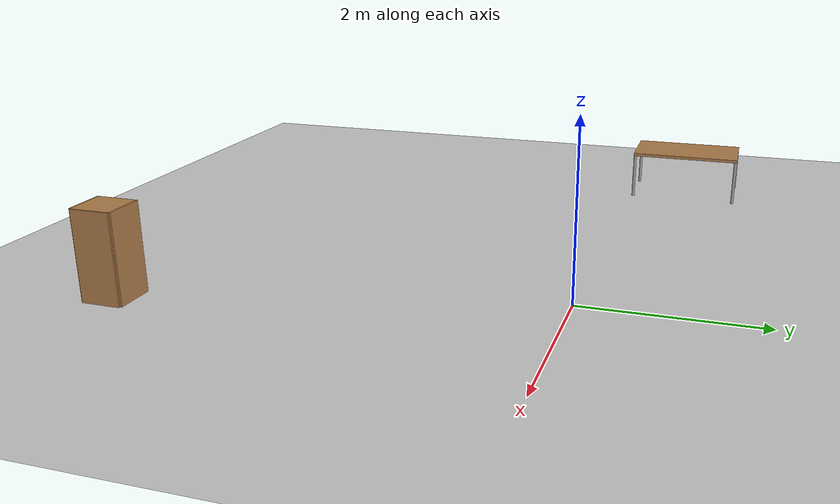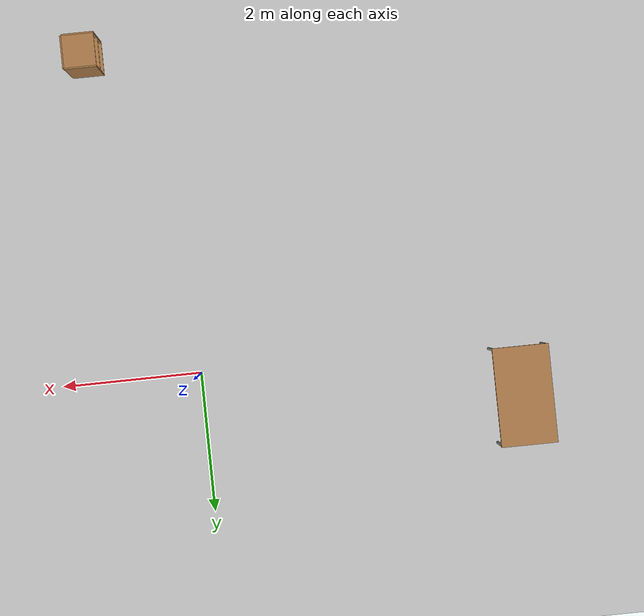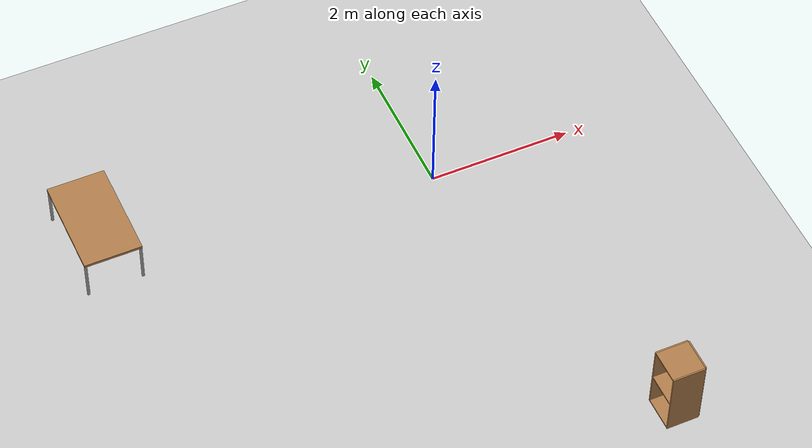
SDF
<sdf version="1.6">
 <world name="default">
  <light name="sun" type="directional">
   <pose>0 0 10 0 -0 0</pose>
   <diffuse>0.8 0.8 0.8 1</diffuse>
   <specular>0.2 0.2 0.2 1</specular>
   <attenuation>
    <range>1000</range>
    <constant>0.9</constant>
    <linear>0.01</linear>
    <quadratic>0.001</quadratic>
   </attenuation>
   <direction>-0.5 0.1 -0.9</direction>
  </light>
  <model name="ground_plane">
   <static>1</static>
   <link name="link">
    <collision name="collision">
     <geometry><plane><normal>0 0 1</normal><size>100 100</size></plane></geometry>
     <surface><friction><ode><mu>100</mu><mu2>50</mu2></ode></friction></surface>
    </collision>
    <visual name="visual">
     <cast_shadows>0</cast_shadows>
     <geometry><plane><normal>0 0 1</normal><size>100 100</size></plane></geometry>
     <material>
      <script><uri>file://media/materials/scripts/gazebo.material</uri><name>Gazebo/Grey</name></script>
     </material>
    </visual>
   </link>
  </model>
  <gravity>0 0 -9.8</gravity>
  <magnetic_field>6e-06 2.3e-05 -4.2e-05</magnetic_field>
  <atmosphere type="adiabatic"/>
  <physics name="default_physics" default="0" type="ode">
   <max_step_size>0.001</max_step_size>
   <real_time_factor>1</real_time_factor>
   <real_time_update_rate>1000</real_time_update_rate>
  </physics>
  <scene><ambient>0.4 0.4 0.4 1</ambient><background>0.7 0.7 0.7 1</background><shadows>1</shadows></scene>
  <audio><device>default</device></audio>
  <spherical_coordinates>
   <surface_model>EARTH_WGS84</surface_model>
   <latitude_deg>0</latitude_deg>
   <longitude_deg>0</longitude_deg>
   <elevation>0</elevation>
   <heading_deg>0</heading_deg>
  </spherical_coordinates>
  <model name="cabinet">
   <static>1</static>
   <link name="cabinet_bottom_plate">
    <inertial>
     <pose>0 0 -1 0 -0 0</pose>
     <inertia><ixx>2.05</ixx><ixy>0</ixy><ixz>0</ixz><iyy>2.05</iyy><iyz>0</iyz><izz>2.05</izz></inertia>
     <mass>25</mass>
    </inertial>
    <collision name="cabinet_bottom_plate_geom">
     <pose>0 0 0.01 0 -0 0</pose>
     <geometry><box><size>0.45 0.45 0.02</size></box></geometry>
    </collision>
    <visual name="cabinet_bottom_plate_geom_visual">
     <pose>0 0 0.01 0 -0 0</pose>
     <geometry><box><size>0.45 0.45 0.02</size></box></geometry>
     <material>
      <script><uri>file://media/materials/scripts/gazebo.material</uri><name>Gazebo/Wood</name></script>
     </material>
    </visual>
    <collision name="cabinet_bottom_plate_geom_cabinet_back_plate">
     <pose>0.235 0 0.51 0 -0 0</pose>
     <geometry><box><size>0.02 0.45 1.02</size></box></geometry>
    </collision>
    <visual name="cabinet_bottom_plate_geom_cabinet_back_plate_visual">
     <pose>0.235 0 0.51 0 -0 0</pose>
     <geometry><box><size>0.02 0.45 1.02</size></box></geometry>
     <material>
      <script><uri>file://media/materials/scripts/gazebo.material</uri><name>Gazebo/Wood</name></script>
     </material>
    </visual>
    <collision name="cabinet_bottom_plate_geom_cabinet_left_plate">
     <pose>0 0.235 0.51 0 -0 0</pose>
     <geometry><box><size>0.45 0.02 1.02</size></box></geometry>
    </collision>
    <visual name="cabinet_bottom_plate_geom_cabinet_left_plate_visual">
     <pose>0 0.235 0.51 0 -0 0</pose>
     <geometry><box><size>0.45 0.02 1.02</size></box></geometry>
     <material>
      <script><uri>file://media/materials/scripts/gazebo.material</uri><name>Gazebo/Wood</name></script>
     </material>
    </visual>
    <collision name="cabinet_bottom_plate_geom_cabinet_middle_plate">
     <pose>0 0 0.51 0 -0 0</pose>
     <geometry><box><size>0.45 0.45 0.02</size></box></geometry>
    </collision>
    <visual name="cabinet_bottom_plate_geom_cabinet_middle_plate_visual">
     <pose>0 0 0.51 0 -0 0</pose>
     <geometry><box><size>0.45 0.45 0.02</size></box></geometry>
     <material>
      <script><uri>file://media/materials/scripts/gazebo.material</uri><name>Gazebo/Wood</name></script>
     </material>
    </visual>
    <collision name="cabinet_bottom_plate_geom_cabinet_right_plate">
     <pose>0 -0.235 0.51 0 -0 0</pose>
     <geometry><box><size>0.45 0.02 1.02</size></box></geometry>
    </collision>
    <visual name="cabinet_bottom_plate_geom_cabinet_right_plate_visual">
     <pose>0 -0.235 0.51 0 -0 0</pose>
     <geometry><box><size>0.45 0.02 1.02</size></box></geometry>
     <material>
      <script><uri>file://media/materials/scripts/gazebo.material</uri><name>Gazebo/Wood</name></script>
     </material>
    </visual>
    <collision name="cabinet_bottom_plate_geom_cabinet_top_plate">
     <pose>0 0 1.01 0 -0 0</pose>
     <geometry><box><size>0.45 0.45 0.02</size></box></geometry>
    </collision>
    <visual name="cabinet_bottom_plate_geom_cabinet_top_plate_visual">
     <pose>0 0 1.01 0 -0 0</pose>
     <geometry><box><size>0.45 0.45 0.02</size></box></geometry>
     <material>
      <script><uri>file://media/materials/scripts/gazebo.material</uri><name>Gazebo/Wood</name></script>
     </material>
    </visual>
   </link>
   <pose>1.18875 -4.65304 0 0 -0 0</pose>
  </model>
  <model name="table_short">
   <link name="link">
    <inertial>
     <inertia><ixx>1</ixx><ixy>0</ixy><ixz>0</ixz><iyy>1</iyy><iyz>0</iyz><izz>1</izz></inertia>
     <mass>1</mass>
    </inertial>
    <visual name="visual1">
     <pose>0 0 0.6 0 -0 0</pose>
     <geometry><box><size>1.4 0.8 0.04</size></box></geometry>
     <material>
      <script><uri>file://media/materials/scripts/gazebo.material</uri><name>Gazebo/Wood</name></script>
      <ambient>1 1 1 1</ambient>
      <diffuse>1 1 1 1</diffuse>
      <specular>0.2 0.2 0.2 1</specular>
      <emissive>0 0 0 1</emissive>
      <shader type="vertex"><normal_map>__default__</normal_map></shader>
     </material>
    </visual>
    <visual name="front_left_leg">
     <pose>0.68 0.38 0.3 0 -0 0</pose>
     <geometry><cylinder><radius>0.02</radius><length>0.6</length></cylinder></geometry>
     <material>
      <script><uri>file://media/materials/scripts/gazebo.material</uri><name>Gazebo/Grey</name></script>
      <ambient>0.3 0.3 0.3 1</ambient>
      <diffuse>0.7 0.7 0.7 1</diffuse>
      <specular>0.01 0.01 0.01 1</specular>
      <emissive>0 0 0 1</emissive>
      <shader type="vertex"><normal_map>__default__</normal_map></shader>
     </material>
    </visual>
    <visual name="front_right_leg">
     <pose>0.68 -0.38 0.3 0 -0 0</pose>
     <geometry><cylinder><radius>0.02</radius><length>0.6</length></cylinder></geometry>
     <material>
      <script><uri>file://media/materials/scripts/gazebo.material</uri><name>Gazebo/Grey</name></script>
      <ambient>0.3 0.3 0.3 1</ambient>
      <diffuse>0.7 0.7 0.7 1</diffuse>
      <specular>0.01 0.01 0.01 1</specular>
      <emissive>0 0 0 1</emissive>
      <shader type="vertex"><normal_map>__default__</normal_map></shader>
     </material>
    </visual>
    <visual name="back_right_leg">
     <pose>-0.68 -0.38 0.3 0 -0 0</pose>
     <geometry><cylinder><radius>0.02</radius><length>0.6</length></cylinder></geometry>
     <material>
      <script><uri>file://media/materials/scripts/gazebo.material</uri><name>Gazebo/Grey</name></script>
      <ambient>0.3 0.3 0.3 1</ambient>
      <diffuse>0.7 0.7 0.7 1</diffuse>
      <specular>0.01 0.01 0.01 1</specular>
      <emissive>0 0 0 1</emissive>
      <shader type="vertex"><normal_map>__default__</normal_map></shader>
     </material>
    </visual>
    <visual name="back_left_leg">
     <pose>-0.68 0.38 0.3 0 -0 0</pose>
     <geometry><cylinder><radius>0.02</radius><length>0.6</length></cylinder></geometry>
     <material>
      <script><uri>file://media/materials/scripts/gazebo.material</uri><name>Gazebo/Grey</name></script>
      <ambient>0.3 0.3 0.3 1</ambient>
      <diffuse>0.7 0.7 0.7 1</diffuse>
      <specular>0.01 0.01 0.01 1</specular>
      <emissive>0 0 0 1</emissive>
      <shader type="vertex"><normal_map>__default__</normal_map></shader>
     </material>
    </visual>
    <collision name="front_left_leg">
     <pose>0.68 0.38 0.3 0 -0 0</pose>
     <geometry><cylinder><radius>0.02</radius><length>0.6</length></cylinder></geometry>
     <surface>
      <friction>
       <ode><mu>1</mu><mu2>1</mu2><fdir1>0 0 0</fdir1><slip1>0</slip1><slip2>0</slip2></ode>
       <torsional>
        <coefficient>1</coefficient>
        <patch_radius>0</patch_radius>
        <surface_radius>0</surface_radius>
        <use_patch_radius>1</use_patch_radius>
        <ode><slip>0</slip></ode>
       </torsional>
      </friction>
      <bounce><restitution_coefficient>0</restitution_coefficient><threshold>1e+06</threshold></bounce>
      <contact>
       <collide_without_contact>0</collide_without_contact>
       <collide_without_contact_bitmask>1</collide_without_contact_bitmask>
       <collide_bitmask>1</collide_bitmask>
       <ode>
        <soft_cfm>0</soft_cfm>
        <soft_erp>0.2</soft_erp>
        <kp>1e+13</kp>
        <kd>1</kd>
        <max_vel>0.01</max_vel>
        <min_depth>0</min_depth>
       </ode>
       <bullet>
        <split_impulse>1</split_impulse>
        <split_impulse_penetration_threshold>-0.01</split_impulse_penetration_threshold>
        <soft_cfm>0</soft_cfm>
        <soft_erp>0.2</soft_erp>
        <kp>1e+13</kp>
        <kd>1</kd>
       </bullet>
      </contact>
     </surface>
    </collision>
    <collision name="surface">
     <pose>0 0 0.6 0 -0 0</pose>
     <geometry><box><size>1.5 0.8 0.03</size></box></geometry>
     <surface>
      <friction>
       <ode><mu>0.6</mu><mu2>0.6</mu2><fdir1>0 0 0</fdir1><slip1>0</slip1><slip2>0</slip2></ode>
       <torsional>
        <coefficient>1</coefficient>
        <patch_radius>0</patch_radius>
        <surface_radius>0</surface_radius>
        <use_patch_radius>1</use_patch_radius>
        <ode><slip>0</slip></ode>
       </torsional>
      </friction>
      <bounce><restitution_coefficient>0</restitution_coefficient><threshold>1e+06</threshold></bounce>
      <contact>
       <collide_without_contact>0</collide_without_contact>
       <collide_without_contact_bitmask>1</collide_without_contact_bitmask>
       <collide_bitmask>1</collide_bitmask>
       <ode>
        <soft_cfm>0</soft_cfm>
        <soft_erp>0.2</soft_erp>
        <kp>1e+13</kp>
        <kd>1</kd>
        <max_vel>0.01</max_vel>
        <min_depth>0</min_depth>
       </ode>
       <bullet>
        <split_impulse>1</split_impulse>
        <split_impulse_penetration_threshold>-0.01</split_impulse_penetration_threshold>
        <soft_cfm>0</soft_cfm>
        <soft_erp>0.2</soft_erp>
        <kp>1e+13</kp>
        <kd>1</kd>
       </bullet>
      </contact>
     </surface>
    </collision>
    <collision name="back_right_leg">
     <pose>-0.68 -0.38 0.3 0 -0 0</pose>
     <geometry><cylinder><radius>0.02</radius><length>0.6</length></cylinder></geometry>
     <surface>
      <friction>
       <ode><mu>1</mu><mu2>1</mu2><fdir1>0 0 0</fdir1><slip1>0</slip1><slip2>0</slip2></ode>
       <torsional>
        <coefficient>1</coefficient>
        <patch_radius>0</patch_radius>
        <surface_radius>0</surface_radius>
        <use_patch_radius>1</use_patch_radius>
        <ode><slip>0</slip></ode>
       </torsional>
      </friction>
      <bounce><restitution_coefficient>0</restitution_coefficient><threshold>1e+06</threshold></bounce>
      <contact>
       <collide_without_contact>0</collide_without_contact>
       <collide_without_contact_bitmask>1</collide_without_contact_bitmask>
       <collide_bitmask>1</collide_bitmask>
       <ode>
        <soft_cfm>0</soft_cfm>
        <soft_erp>0.2</soft_erp>
        <kp>1e+13</kp>
        <kd>1</kd>
        <max_vel>0.01</max_vel>
        <min_depth>0</min_depth>
       </ode>
       <bullet>
        <split_impulse>1</split_impulse>
        <split_impulse_penetration_threshold>-0.01</split_impulse_penetration_threshold>
        <soft_cfm>0</soft_cfm>
        <soft_erp>0.2</soft_erp>
        <kp>1e+13</kp>
        <kd>1</kd>
       </bullet>
      </contact>
     </surface>
    </collision>
    <collision name="back_left_leg">
     <pose>-0.68 0.38 0.3 0 -0 0</pose>
     <geometry><cylinder><radius>0.02</radius><length>0.6</length></cylinder></geometry>
     <surface>
      <friction>
       <ode><mu>1</mu><mu2>1</mu2><fdir1>0 0 0</fdir1><slip1>0</slip1><slip2>0</slip2></ode>
       <torsional>
        <coefficient>1</coefficient>
        <patch_radius>0</patch_radius>
        <surface_radius>0</surface_radius>
        <use_patch_radius>1</use_patch_radius>
        <ode><slip>0</slip></ode>
       </torsional>
      </friction>
      <bounce><restitution_coefficient>0</restitution_coefficient><threshold>1e+06</threshold></bounce>
      <contact>
       <collide_without_contact>0</collide_without_contact>
       <collide_without_contact_bitmask>1</collide_without_contact_bitmask>
       <collide_bitmask>1</collide_bitmask>
       <ode>
        <soft_cfm>0</soft_cfm>
        <soft_erp>0.2</soft_erp>
        <kp>1e+13</kp>
        <kd>1</kd>
        <max_vel>0.01</max_vel>
        <min_depth>0</min_depth>
       </ode>
       <bullet>
        <split_impulse>1</split_impulse>
        <split_impulse_penetration_threshold>-0.01</split_impulse_penetration_threshold>
        <soft_cfm>0</soft_cfm>
        <soft_erp>0.2</soft_erp>
        <kp>1e+13</kp>
        <kd>1</kd>
       </bullet>
      </contact>
     </surface>
    </collision>
    <collision name="front_right_leg">
     <pose>0.68 -0.38 0.3 0 -0 0</pose>
     <geometry><cylinder><radius>0.02</radius><length>0.6</length></cylinder></geometry>
     <surface>
      <friction>
       <ode><mu>1</mu><mu2>1</mu2><fdir1>0 0 0</fdir1><slip1>0</slip1><slip2>0</slip2></ode>
       <torsional>
        <coefficient>1</coefficient>
        <patch_radius>0</patch_radius>
        <surface_radius>0</surface_radius>
        <use_patch_radius>1</use_patch_radius>
        <ode><slip>0</slip></ode>
       </torsional>
      </friction>
      <bounce><restitution_coefficient>0</restitution_coefficient><threshold>1e+06</threshold></bounce>
      <contact>
       <collide_without_contact>0</collide_without_contact>
       <collide_without_contact_bitmask>1</collide_without_contact_bitmask>
       <collide_bitmask>1</collide_bitmask>
       <ode>
        <soft_cfm>0</soft_cfm>
        <soft_erp>0.2</soft_erp>
        <kp>1e+13</kp>
        <kd>1</kd>
        <max_vel>0.01</max_vel>
        <min_depth>0</min_depth>
       </ode>
       <bullet>
        <split_impulse>1</split_impulse>
        <split_impulse_penetration_threshold>-0.01</split_impulse_penetration_threshold>
        <soft_cfm>0</soft_cfm>
        <soft_erp>0.2</soft_erp>
        <kp>1e+13</kp>
        <kd>1</kd>
       </bullet>
      </contact>
     </surface>
    </collision>
   </link>
   <static>0</static>
   <pose>-4.52818 0.7433 -1e-06 0 -2e-06 1.5708</pose>
  </model>
 </world>
</sdf>
